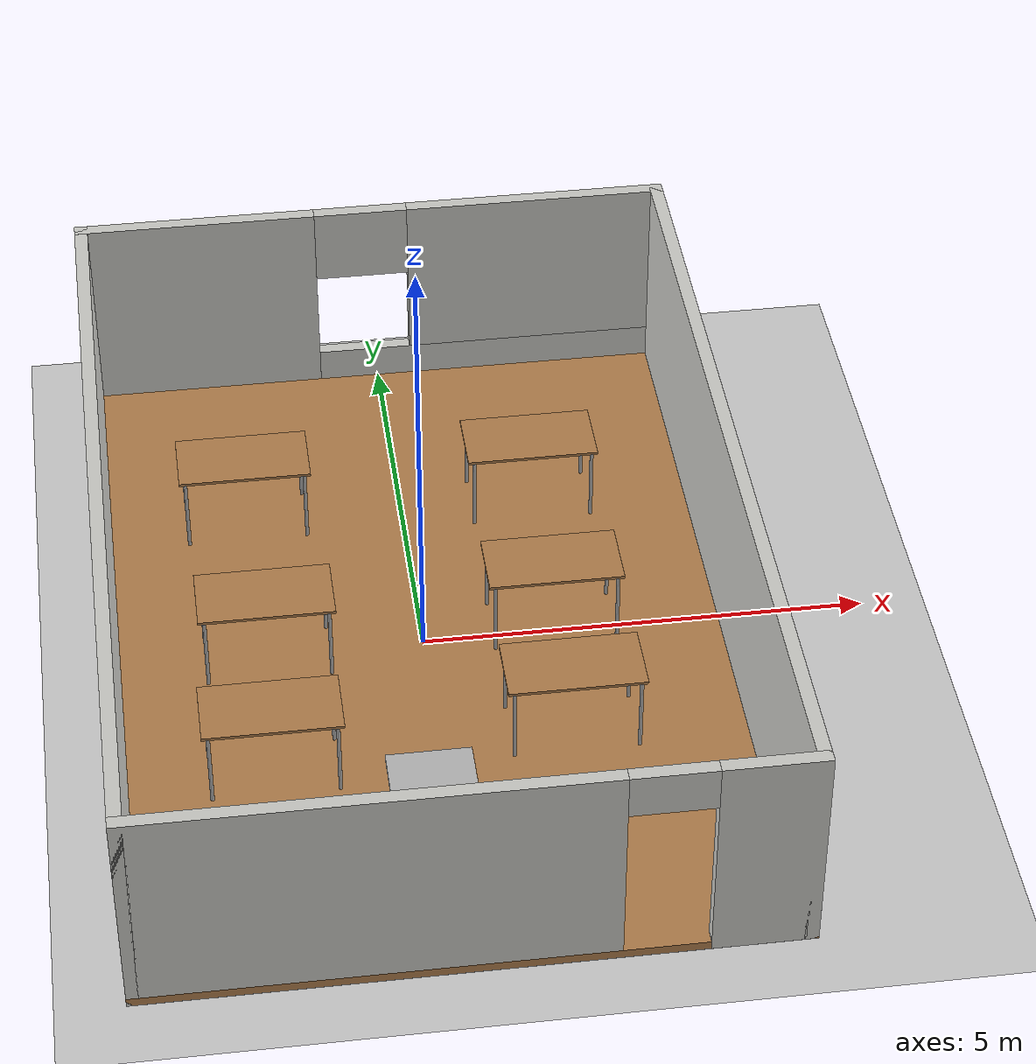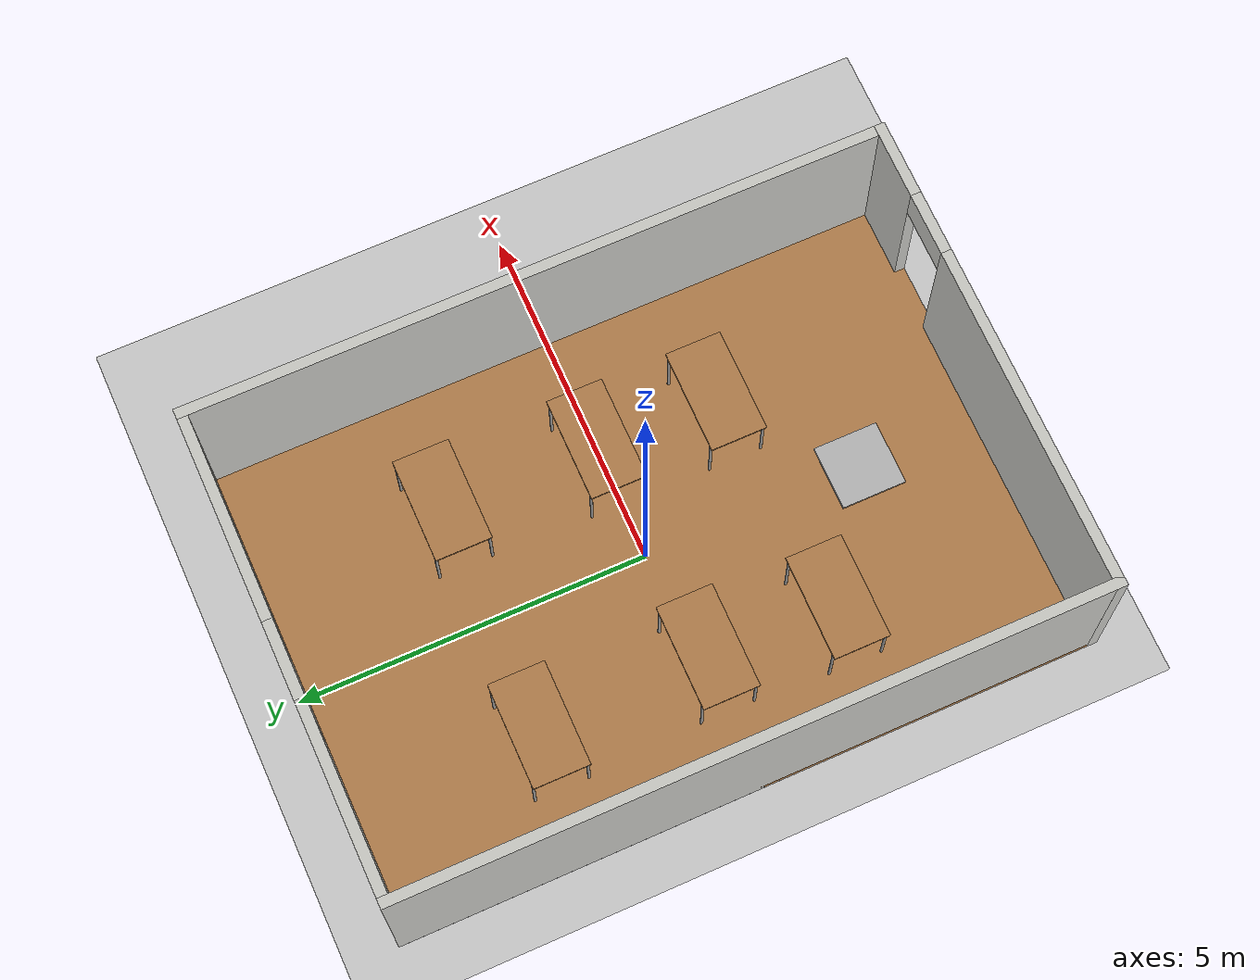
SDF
<sdf version="1.6">
 <world name="default">
  <light name="sun" type="directional">
   <pose>0 0 10 0 -0 0</pose>
   <diffuse>0.8 0.8 0.8 1</diffuse>
   <specular>0.1 0.1 0.1 1</specular>
   <attenuation>
    <range>1000</range>
    <constant>0.9</constant>
    <linear>0.01</linear>
    <quadratic>0.001</quadratic>
   </attenuation>
   <direction>-0.5 0.5 -1</direction>
  </light>
  <model name="ground_plane">
   <static>1</static>
   <link name="link">
    <collision name="collision">
     <geometry><plane><normal>0 0 1</normal><size>100 100</size></plane></geometry>
     <surface><friction><ode><mu>100</mu><mu2>50</mu2></ode></friction></surface>
    </collision>
    <visual name="visual">
     <cast_shadows>0</cast_shadows>
     <geometry><plane><normal>0 0 1</normal><size>100 100</size></plane></geometry>
     <material>
      <script><uri>file://media/materials/scripts/gazebo.material</uri><name>Gazebo/Grey</name></script>
     </material>
    </visual>
   </link>
  </model>
  <gravity>0 0 -9.8</gravity>
  <magnetic_field>6e-06 2.3e-05 -4.2e-05</magnetic_field>
  <atmosphere type="adiabatic"/>
  <physics name="default_physics" default="0" type="ode">
   <max_step_size>0.001</max_step_size>
   <real_time_factor>1</real_time_factor>
   <real_time_update_rate>1000</real_time_update_rate>
  </physics>
  <scene><ambient>0.4 0.4 0.4 1</ambient><background>0.7 0.7 0.7 1</background><shadows>1</shadows></scene>
  <spherical_coordinates>
   <surface_model>EARTH_WGS84</surface_model>
   <latitude_deg>0</latitude_deg>
   <longitude_deg>0</longitude_deg>
   <elevation>0</elevation>
   <heading_deg>0</heading_deg>
  </spherical_coordinates>
  <model name="new.world">
   <model name="jing">
    <model name="cafe_table">
     <static>1</static>
     <link name="link">
      <collision name="surface">
       <pose>0 0 0.755 0 -0 0</pose>
       <geometry><box><size>0.913 0.913 0.04</size></box></geometry>
      </collision>
      <collision name="column">
       <pose>0 0 0.37 0 -0 0</pose>
       <geometry><box><size>0.042 0.042 0.74</size></box></geometry>
      </collision>
      <collision name="base">
       <pose>0 0 0.02 0 -0 0</pose>
       <geometry><box><size>0.56 0.56 0.04</size></box></geometry>
      </collision>
      <visual name="visual">
       <geometry><mesh><uri>model://cafe_table/meshes/cafe_table.dae</uri></mesh></geometry>
      </visual>
     </link>
     <pose>-0.06726 -2.75228 0 0 -0 0</pose>
    </model>
    <model name="jingzhuang1">
     <pose>0.126554 0.275884 0 0 -0 0</pose>
     <link name="Floor_1">
      <collision name="Floor_1_Collision">
       <geometry><box><size>7 10 0.1</size></box></geometry>
       <pose>0 0 0.05 0 -0 0</pose>
      </collision>
      <visual name="Floor_1_Visual">
       <pose>0 0 0.05 0 -0 0</pose>
       <geometry><box><size>7 10 0.1</size></box></geometry>
       <material>
        <script><uri>file://media/materials/scripts/gazebo.material</uri><name>Gazebo/Wood</name></script>
        <ambient>1 1 1 1</ambient>
       </material>
       <meta><layer>1</layer></meta>
      </visual>
      <pose>0 0 0.001 0 -0 0</pose>
     </link>
     <link name="Wall_0">
      <collision name="Wall_0_Collision">
       <geometry><box><size>10 0.15 0.001</size></box></geometry>
       <pose>0 0 0.0005 0 -0 0</pose>
      </collision>
      <visual name="Wall_0_Visual">
       <pose>0 0 0.0005 0 -0 0</pose>
       <geometry><box><size>10 0.15 0.001</size></box></geometry>
       <material>
        <script><uri>file://media/materials/scripts/gazebo.material</uri><name>Gazebo/Grey</name></script>
        <ambient>1 1 1 1</ambient>
       </material>
       <meta><layer>0</layer></meta>
      </visual>
      <pose>-3.425 0 0 0 -0 1.5708</pose>
     </link>
     <link name="Wall_10">
      <collision name="Wall_10_Collision">
       <geometry><box><size>10 0.15 0.001</size></box></geometry>
       <pose>0 0 0.0005 0 -0 0</pose>
      </collision>
      <visual name="Wall_10_Visual">
       <pose>0 0 0.0005 0 -0 0</pose>
       <geometry><box><size>10 0.15 0.001</size></box></geometry>
       <material>
        <script><uri>file://media/materials/scripts/gazebo.material</uri><name>Gazebo/Grey</name></script>
        <ambient>1 1 1 1</ambient>
       </material>
       <meta><layer>0</layer></meta>
      </visual>
      <pose>3.425 0 0 0 -0 1.5708</pose>
     </link>
     <link name="Wall_16">
      <collision name="Wall_16_Collision">
       <geometry><box><size>10 0.15 2.5</size></box></geometry>
       <pose>0 0 1.25 0 -0 0</pose>
      </collision>
      <visual name="Wall_16_Visual">
       <pose>0 0 1.25 0 -0 0</pose>
       <geometry><box><size>10 0.15 2.5</size></box></geometry>
       <material>
        <script><uri>file://media/materials/scripts/gazebo.material</uri><name>Gazebo/CeilingTiled</name></script>
        <ambient>1 1 1 1</ambient>
       </material>
       <meta><layer>1</layer></meta>
      </visual>
      <pose>-3.425 0 0.001 0 -0 1.5708</pose>
     </link>
     <link name="Wall_17">
      <pose>0 4.925 0.001 0 -0 0</pose>
      <visual name="Wall_17_Visual_0">
       <pose>-2.09148 0 1.25 0 -0 0</pose>
       <geometry><box><size>2.81703 0.15 2.5</size></box></geometry>
       <material>
        <script><uri>file://media/materials/scripts/gazebo.material</uri><name>Gazebo/CeilingTiled</name></script>
        <ambient>1 1 1 1</ambient>
       </material>
       <meta><layer>1</layer></meta>
      </visual>
      <collision name="Wall_17_Collision_0">
       <geometry><box><size>2.81703 0.15 2.5</size></box></geometry>
       <pose>-2.09148 0 1.25 0 -0 0</pose>
      </collision>
      <visual name="Wall_17_Visual_1">
       <pose>1.40852 0 0.25 0 -0 0</pose>
       <geometry><box><size>4.18297 0.15 0.5</size></box></geometry>
       <material>
        <script><uri>file://media/materials/scripts/gazebo.material</uri><name>Gazebo/CeilingTiled</name></script>
        <ambient>1 1 1 1</ambient>
       </material>
       <meta><layer>1</layer></meta>
      </visual>
      <collision name="Wall_17_Collision_1">
       <geometry><box><size>4.18297 0.15 0.5</size></box></geometry>
       <pose>1.40852 0 0.25 0 -0 0</pose>
      </collision>
      <visual name="Wall_17_Visual_2">
       <pose>1.95852 0 1.5 0 -0 0</pose>
       <geometry><box><size>3.08297 0.15 2</size></box></geometry>
       <material>
        <script><uri>file://media/materials/scripts/gazebo.material</uri><name>Gazebo/CeilingTiled</name></script>
        <ambient>1 1 1 1</ambient>
       </material>
       <meta><layer>1</layer></meta>
      </visual>
      <collision name="Wall_17_Collision_2">
       <geometry><box><size>3.08297 0.15 2</size></box></geometry>
       <pose>1.95852 0 1.5 0 -0 0</pose>
      </collision>
      <visual name="Wall_17_Visual_3">
       <pose>-0.132966 0 2.05 0 -0 0</pose>
       <geometry><box><size>1.1 0.15 0.9</size></box></geometry>
       <material>
        <script><uri>file://media/materials/scripts/gazebo.material</uri><name>Gazebo/CeilingTiled</name></script>
        <ambient>1 1 1 1</ambient>
       </material>
       <meta><layer>1</layer></meta>
      </visual>
      <collision name="Wall_17_Collision_3">
       <geometry><box><size>1.1 0.15 0.9</size></box></geometry>
       <pose>-0.132966 0 2.05 0 -0 0</pose>
      </collision>
     </link>
     <link name="Wall_18">
      <pose>0 -4.925 0.001 0 -0 0</pose>
      <visual name="Wall_18_Visual_0">
       <pose>-1.00408 0 1.25 0 -0 0</pose>
       <geometry><box><size>4.99185 0.15 2.5</size></box></geometry>
       <material>
        <script><uri>file://media/materials/scripts/gazebo.material</uri><name>Gazebo/CeilingTiled</name></script>
        <ambient>1 1 1 1</ambient>
       </material>
       <meta><layer>1</layer></meta>
      </visual>
      <collision name="Wall_18_Collision_0">
       <geometry><box><size>4.99185 0.15 2.5</size></box></geometry>
       <pose>-1.00408 0 1.25 0 -0 0</pose>
      </collision>
      <visual name="Wall_18_Visual_1">
       <pose>2.94592 0 1.25 0 -0 0</pose>
       <geometry><box><size>1.10815 0.15 2.5</size></box></geometry>
       <material>
        <script><uri>file://media/materials/scripts/gazebo.material</uri><name>Gazebo/CeilingTiled</name></script>
        <ambient>1 1 1 1</ambient>
       </material>
       <meta><layer>1</layer></meta>
      </visual>
      <collision name="Wall_18_Collision_1">
       <geometry><box><size>1.10815 0.15 2.5</size></box></geometry>
       <pose>2.94592 0 1.25 0 -0 0</pose>
      </collision>
      <visual name="Wall_18_Visual_2">
       <pose>1.94185 0 2.25 0 -0 0</pose>
       <geometry><box><size>0.9 0.15 0.5</size></box></geometry>
       <material>
        <script><uri>file://media/materials/scripts/gazebo.material</uri><name>Gazebo/CeilingTiled</name></script>
        <ambient>1 1 1 1</ambient>
       </material>
       <meta><layer>1</layer></meta>
      </visual>
      <collision name="Wall_18_Collision_2">
       <geometry><box><size>0.9 0.15 0.5</size></box></geometry>
       <pose>1.94185 0 2.25 0 -0 0</pose>
      </collision>
     </link>
     <link name="Wall_19">
      <collision name="Wall_19_Collision">
       <geometry><box><size>10 0.15 2.5</size></box></geometry>
       <pose>0 0 1.25 0 -0 0</pose>
      </collision>
      <visual name="Wall_19_Visual">
       <pose>0 0 1.25 0 -0 0</pose>
       <geometry><box><size>10 0.15 2.5</size></box></geometry>
       <material>
        <script><uri>file://media/materials/scripts/gazebo.material</uri><name>Gazebo/CeilingTiled</name></script>
        <ambient>1 1 1 1</ambient>
       </material>
       <meta><layer>1</layer></meta>
      </visual>
      <pose>3.425 0 0.001 0 -0 1.5708</pose>
     </link>
     <link name="Wall_6">
      <collision name="Wall_6_Collision">
       <geometry><box><size>7.00007 0.15 0.001</size></box></geometry>
       <pose>0 0 0.0005 0 -0 0</pose>
      </collision>
      <visual name="Wall_6_Visual">
       <pose>0 0 0.0005 0 -0 0</pose>
       <geometry><box><size>7.00007 0.15 0.001</size></box></geometry>
       <material>
        <script><uri>file://media/materials/scripts/gazebo.material</uri><name>Gazebo/Grey</name></script>
        <ambient>1 1 1 1</ambient>
       </material>
       <meta><layer>0</layer></meta>
      </visual>
      <pose>0 4.925 0 0 -0 0</pose>
     </link>
     <link name="Wall_8">
      <collision name="Wall_8_Collision">
       <geometry><box><size>7 0.15 0.001</size></box></geometry>
       <pose>0 0 0.0005 0 -0 0</pose>
      </collision>
      <visual name="Wall_8_Visual">
       <pose>0 0 0.0005 0 -0 0</pose>
       <geometry><box><size>7 0.15 0.001</size></box></geometry>
       <material>
        <script><uri>file://media/materials/scripts/gazebo.material</uri><name>Gazebo/Grey</name></script>
        <ambient>1 1 1 1</ambient>
       </material>
       <meta><layer>0</layer></meta>
      </visual>
      <pose>0 -4.925 0 0 -0 0</pose>
     </link>
     <static>1</static>
    </model>
    <model name="table">
     <static>1</static>
     <link name="link">
      <collision name="surface">
       <pose>0 0 1 0 -0 0</pose>
       <geometry><box><size>1.5 0.8 0.03</size></box></geometry>
       <surface><friction><ode><mu>0.6</mu><mu2>0.6</mu2></ode></friction></surface>
      </collision>
      <visual name="visual1">
       <pose>0 0 1 0 -0 0</pose>
       <geometry><box><size>1.5 0.8 0.03</size></box></geometry>
       <material>
        <script><uri>file://media/materials/scripts/gazebo.material</uri><name>Gazebo/Wood</name></script>
       </material>
      </visual>
      <collision name="front_left_leg">
       <pose>0.68 0.38 0.5 0 -0 0</pose>
       <geometry><cylinder><radius>0.02</radius><length>1</length></cylinder></geometry>
      </collision>
      <visual name="front_left_leg">
       <pose>0.68 0.38 0.5 0 -0 0</pose>
       <geometry><cylinder><radius>0.02</radius><length>1</length></cylinder></geometry>
       <material>
        <script><uri>file://media/materials/scripts/gazebo.material</uri><name>Gazebo/Grey</name></script>
       </material>
      </visual>
      <collision name="front_right_leg">
       <pose>0.68 -0.38 0.5 0 -0 0</pose>
       <geometry><cylinder><radius>0.02</radius><length>1</length></cylinder></geometry>
      </collision>
      <visual name="front_right_leg">
       <pose>0.68 -0.38 0.5 0 -0 0</pose>
       <geometry><cylinder><radius>0.02</radius><length>1</length></cylinder></geometry>
       <material>
        <script><uri>file://media/materials/scripts/gazebo.material</uri><name>Gazebo/Grey</name></script>
       </material>
      </visual>
      <collision name="back_right_leg">
       <pose>-0.68 -0.38 0.5 0 -0 0</pose>
       <geometry><cylinder><radius>0.02</radius><length>1</length></cylinder></geometry>
      </collision>
      <visual name="back_right_leg">
       <pose>-0.68 -0.38 0.5 0 -0 0</pose>
       <geometry><cylinder><radius>0.02</radius><length>1</length></cylinder></geometry>
       <material>
        <script><uri>file://media/materials/scripts/gazebo.material</uri><name>Gazebo/Grey</name></script>
       </material>
      </visual>
      <collision name="back_left_leg">
       <pose>-0.68 0.38 0.5 0 -0 0</pose>
       <geometry><cylinder><radius>0.02</radius><length>1</length></cylinder></geometry>
      </collision>
      <visual name="back_left_leg">
       <pose>-0.68 0.38 0.5 0 -0 0</pose>
       <geometry><cylinder><radius>0.02</radius><length>1</length></cylinder></geometry>
       <material>
        <script><uri>file://media/materials/scripts/gazebo.material</uri><name>Gazebo/Grey</name></script>
       </material>
      </visual>
     </link>
     <pose>-1.66047 2.55312 0 0 -0 0</pose>
    </model>
    <model name="table_0">
     <static>1</static>
     <link name="link">
      <collision name="surface">
       <pose>0 0 1 0 -0 0</pose>
       <geometry><box><size>1.5 0.8 0.03</size></box></geometry>
       <surface><friction><ode><mu>0.6</mu><mu2>0.6</mu2></ode></friction></surface>
      </collision>
      <visual name="visual1">
       <pose>0 0 1 0 -0 0</pose>
       <geometry><box><size>1.5 0.8 0.03</size></box></geometry>
       <material>
        <script><uri>file://media/materials/scripts/gazebo.material</uri><name>Gazebo/Wood</name></script>
       </material>
      </visual>
      <collision name="front_left_leg">
       <pose>0.68 0.38 0.5 0 -0 0</pose>
       <geometry><cylinder><radius>0.02</radius><length>1</length></cylinder></geometry>
      </collision>
      <visual name="front_left_leg">
       <pose>0.68 0.38 0.5 0 -0 0</pose>
       <geometry><cylinder><radius>0.02</radius><length>1</length></cylinder></geometry>
       <material>
        <script><uri>file://media/materials/scripts/gazebo.material</uri><name>Gazebo/Grey</name></script>
       </material>
      </visual>
      <collision name="front_right_leg">
       <pose>0.68 -0.38 0.5 0 -0 0</pose>
       <geometry><cylinder><radius>0.02</radius><length>1</length></cylinder></geometry>
      </collision>
      <visual name="front_right_leg">
       <pose>0.68 -0.38 0.5 0 -0 0</pose>
       <geometry><cylinder><radius>0.02</radius><length>1</length></cylinder></geometry>
       <material>
        <script><uri>file://media/materials/scripts/gazebo.material</uri><name>Gazebo/Grey</name></script>
       </material>
      </visual>
      <collision name="back_right_leg">
       <pose>-0.68 -0.38 0.5 0 -0 0</pose>
       <geometry><cylinder><radius>0.02</radius><length>1</length></cylinder></geometry>
      </collision>
      <visual name="back_right_leg">
       <pose>-0.68 -0.38 0.5 0 -0 0</pose>
       <geometry><cylinder><radius>0.02</radius><length>1</length></cylinder></geometry>
       <material>
        <script><uri>file://media/materials/scripts/gazebo.material</uri><name>Gazebo/Grey</name></script>
       </material>
      </visual>
      <collision name="back_left_leg">
       <pose>-0.68 0.38 0.5 0 -0 0</pose>
       <geometry><cylinder><radius>0.02</radius><length>1</length></cylinder></geometry>
      </collision>
      <visual name="back_left_leg">
       <pose>-0.68 0.38 0.5 0 -0 0</pose>
       <geometry><cylinder><radius>0.02</radius><length>1</length></cylinder></geometry>
       <material>
        <script><uri>file://media/materials/scripts/gazebo.material</uri><name>Gazebo/Grey</name></script>
       </material>
      </visual>
     </link>
     <pose>-1.59073 0.155471 0 0 -0 0</pose>
    </model>
    <model name="table_1">
     <static>1</static>
     <link name="link">
      <collision name="surface">
       <pose>0 0 1 0 -0 0</pose>
       <geometry><box><size>1.5 0.8 0.03</size></box></geometry>
       <surface><friction><ode><mu>0.6</mu><mu2>0.6</mu2></ode></friction></surface>
      </collision>
      <visual name="visual1">
       <pose>0 0 1 0 -0 0</pose>
       <geometry><box><size>1.5 0.8 0.03</size></box></geometry>
       <material>
        <script><uri>file://media/materials/scripts/gazebo.material</uri><name>Gazebo/Wood</name></script>
       </material>
      </visual>
      <collision name="front_left_leg">
       <pose>0.68 0.38 0.5 0 -0 0</pose>
       <geometry><cylinder><radius>0.02</radius><length>1</length></cylinder></geometry>
      </collision>
      <visual name="front_left_leg">
       <pose>0.68 0.38 0.5 0 -0 0</pose>
       <geometry><cylinder><radius>0.02</radius><length>1</length></cylinder></geometry>
       <material>
        <script><uri>file://media/materials/scripts/gazebo.material</uri><name>Gazebo/Grey</name></script>
       </material>
      </visual>
      <collision name="front_right_leg">
       <pose>0.68 -0.38 0.5 0 -0 0</pose>
       <geometry><cylinder><radius>0.02</radius><length>1</length></cylinder></geometry>
      </collision>
      <visual name="front_right_leg">
       <pose>0.68 -0.38 0.5 0 -0 0</pose>
       <geometry><cylinder><radius>0.02</radius><length>1</length></cylinder></geometry>
       <material>
        <script><uri>file://media/materials/scripts/gazebo.material</uri><name>Gazebo/Grey</name></script>
       </material>
      </visual>
      <collision name="back_right_leg">
       <pose>-0.68 -0.38 0.5 0 -0 0</pose>
       <geometry><cylinder><radius>0.02</radius><length>1</length></cylinder></geometry>
      </collision>
      <visual name="back_right_leg">
       <pose>-0.68 -0.38 0.5 0 -0 0</pose>
       <geometry><cylinder><radius>0.02</radius><length>1</length></cylinder></geometry>
       <material>
        <script><uri>file://media/materials/scripts/gazebo.material</uri><name>Gazebo/Grey</name></script>
       </material>
      </visual>
      <collision name="back_left_leg">
       <pose>-0.68 0.38 0.5 0 -0 0</pose>
       <geometry><cylinder><radius>0.02</radius><length>1</length></cylinder></geometry>
      </collision>
      <visual name="back_left_leg">
       <pose>-0.68 0.38 0.5 0 -0 0</pose>
       <geometry><cylinder><radius>0.02</radius><length>1</length></cylinder></geometry>
       <material>
        <script><uri>file://media/materials/scripts/gazebo.material</uri><name>Gazebo/Grey</name></script>
       </material>
      </visual>
     </link>
     <pose>-1.66332 -1.65975 0 0 -0 0</pose>
    </model>
    <model name="table_2">
     <static>1</static>
     <link name="link">
      <collision name="surface">
       <pose>0 0 1 0 -0 0</pose>
       <geometry><box><size>1.5 0.8 0.03</size></box></geometry>
       <surface><friction><ode><mu>0.6</mu><mu2>0.6</mu2></ode></friction></surface>
      </collision>
      <visual name="visual1">
       <pose>0 0 1 0 -0 0</pose>
       <geometry><box><size>1.5 0.8 0.03</size></box></geometry>
       <material>
        <script><uri>file://media/materials/scripts/gazebo.material</uri><name>Gazebo/Wood</name></script>
       </material>
      </visual>
      <collision name="front_left_leg">
       <pose>0.68 0.38 0.5 0 -0 0</pose>
       <geometry><cylinder><radius>0.02</radius><length>1</length></cylinder></geometry>
      </collision>
      <visual name="front_left_leg">
       <pose>0.68 0.38 0.5 0 -0 0</pose>
       <geometry><cylinder><radius>0.02</radius><length>1</length></cylinder></geometry>
       <material>
        <script><uri>file://media/materials/scripts/gazebo.material</uri><name>Gazebo/Grey</name></script>
       </material>
      </visual>
      <collision name="front_right_leg">
       <pose>0.68 -0.38 0.5 0 -0 0</pose>
       <geometry><cylinder><radius>0.02</radius><length>1</length></cylinder></geometry>
      </collision>
      <visual name="front_right_leg">
       <pose>0.68 -0.38 0.5 0 -0 0</pose>
       <geometry><cylinder><radius>0.02</radius><length>1</length></cylinder></geometry>
       <material>
        <script><uri>file://media/materials/scripts/gazebo.material</uri><name>Gazebo/Grey</name></script>
       </material>
      </visual>
      <collision name="back_right_leg">
       <pose>-0.68 -0.38 0.5 0 -0 0</pose>
       <geometry><cylinder><radius>0.02</radius><length>1</length></cylinder></geometry>
      </collision>
      <visual name="back_right_leg">
       <pose>-0.68 -0.38 0.5 0 -0 0</pose>
       <geometry><cylinder><radius>0.02</radius><length>1</length></cylinder></geometry>
       <material>
        <script><uri>file://media/materials/scripts/gazebo.material</uri><name>Gazebo/Grey</name></script>
       </material>
      </visual>
      <collision name="back_left_leg">
       <pose>-0.68 0.38 0.5 0 -0 0</pose>
       <geometry><cylinder><radius>0.02</radius><length>1</length></cylinder></geometry>
      </collision>
      <visual name="back_left_leg">
       <pose>-0.68 0.38 0.5 0 -0 0</pose>
       <geometry><cylinder><radius>0.02</radius><length>1</length></cylinder></geometry>
       <material>
        <script><uri>file://media/materials/scripts/gazebo.material</uri><name>Gazebo/Grey</name></script>
       </material>
      </visual>
     </link>
     <pose>1.65063 2.51376 0 0 -0 0</pose>
    </model>
    <model name="table_3">
     <static>1</static>
     <link name="link">
      <collision name="surface">
       <pose>0 0 1 0 -0 0</pose>
       <geometry><box><size>1.5 0.8 0.03</size></box></geometry>
       <surface><friction><ode><mu>0.6</mu><mu2>0.6</mu2></ode></friction></surface>
      </collision>
      <visual name="visual1">
       <pose>0 0 1 0 -0 0</pose>
       <geometry><box><size>1.5 0.8 0.03</size></box></geometry>
       <material>
        <script><uri>file://media/materials/scripts/gazebo.material</uri><name>Gazebo/Wood</name></script>
       </material>
      </visual>
      <collision name="front_left_leg">
       <pose>0.68 0.38 0.5 0 -0 0</pose>
       <geometry><cylinder><radius>0.02</radius><length>1</length></cylinder></geometry>
      </collision>
      <visual name="front_left_leg">
       <pose>0.68 0.38 0.5 0 -0 0</pose>
       <geometry><cylinder><radius>0.02</radius><length>1</length></cylinder></geometry>
       <material>
        <script><uri>file://media/materials/scripts/gazebo.material</uri><name>Gazebo/Grey</name></script>
       </material>
      </visual>
      <collision name="front_right_leg">
       <pose>0.68 -0.38 0.5 0 -0 0</pose>
       <geometry><cylinder><radius>0.02</radius><length>1</length></cylinder></geometry>
      </collision>
      <visual name="front_right_leg">
       <pose>0.68 -0.38 0.5 0 -0 0</pose>
       <geometry><cylinder><radius>0.02</radius><length>1</length></cylinder></geometry>
       <material>
        <script><uri>file://media/materials/scripts/gazebo.material</uri><name>Gazebo/Grey</name></script>
       </material>
      </visual>
      <collision name="back_right_leg">
       <pose>-0.68 -0.38 0.5 0 -0 0</pose>
       <geometry><cylinder><radius>0.02</radius><length>1</length></cylinder></geometry>
      </collision>
      <visual name="back_right_leg">
       <pose>-0.68 -0.38 0.5 0 -0 0</pose>
       <geometry><cylinder><radius>0.02</radius><length>1</length></cylinder></geometry>
       <material>
        <script><uri>file://media/materials/scripts/gazebo.material</uri><name>Gazebo/Grey</name></script>
       </material>
      </visual>
      <collision name="back_left_leg">
       <pose>-0.68 0.38 0.5 0 -0 0</pose>
       <geometry><cylinder><radius>0.02</radius><length>1</length></cylinder></geometry>
      </collision>
      <visual name="back_left_leg">
       <pose>-0.68 0.38 0.5 0 -0 0</pose>
       <geometry><cylinder><radius>0.02</radius><length>1</length></cylinder></geometry>
       <material>
        <script><uri>file://media/materials/scripts/gazebo.material</uri><name>Gazebo/Grey</name></script>
       </material>
      </visual>
     </link>
     <pose>1.61298 0.318659 0 0 -0 0</pose>
    </model>
    <model name="table_4">
     <static>1</static>
     <link name="link">
      <collision name="surface">
       <pose>0 0 1 0 -0 0</pose>
       <geometry><box><size>1.5 0.8 0.03</size></box></geometry>
       <surface><friction><ode><mu>0.6</mu><mu2>0.6</mu2></ode></friction></surface>
      </collision>
      <visual name="visual1">
       <pose>0 0 1 0 -0 0</pose>
       <geometry><box><size>1.5 0.8 0.03</size></box></geometry>
       <material>
        <script><uri>file://media/materials/scripts/gazebo.material</uri><name>Gazebo/Wood</name></script>
       </material>
      </visual>
      <collision name="front_left_leg">
       <pose>0.68 0.38 0.5 0 -0 0</pose>
       <geometry><cylinder><radius>0.02</radius><length>1</length></cylinder></geometry>
      </collision>
      <visual name="front_left_leg">
       <pose>0.68 0.38 0.5 0 -0 0</pose>
       <geometry><cylinder><radius>0.02</radius><length>1</length></cylinder></geometry>
       <material>
        <script><uri>file://media/materials/scripts/gazebo.material</uri><name>Gazebo/Grey</name></script>
       </material>
      </visual>
      <collision name="front_right_leg">
       <pose>0.68 -0.38 0.5 0 -0 0</pose>
       <geometry><cylinder><radius>0.02</radius><length>1</length></cylinder></geometry>
      </collision>
      <visual name="front_right_leg">
       <pose>0.68 -0.38 0.5 0 -0 0</pose>
       <geometry><cylinder><radius>0.02</radius><length>1</length></cylinder></geometry>
       <material>
        <script><uri>file://media/materials/scripts/gazebo.material</uri><name>Gazebo/Grey</name></script>
       </material>
      </visual>
      <collision name="back_right_leg">
       <pose>-0.68 -0.38 0.5 0 -0 0</pose>
       <geometry><cylinder><radius>0.02</radius><length>1</length></cylinder></geometry>
      </collision>
      <visual name="back_right_leg">
       <pose>-0.68 -0.38 0.5 0 -0 0</pose>
       <geometry><cylinder><radius>0.02</radius><length>1</length></cylinder></geometry>
       <material>
        <script><uri>file://media/materials/scripts/gazebo.material</uri><name>Gazebo/Grey</name></script>
       </material>
      </visual>
      <collision name="back_left_leg">
       <pose>-0.68 0.38 0.5 0 -0 0</pose>
       <geometry><cylinder><radius>0.02</radius><length>1</length></cylinder></geometry>
      </collision>
      <visual name="back_left_leg">
       <pose>-0.68 0.38 0.5 0 -0 0</pose>
       <geometry><cylinder><radius>0.02</radius><length>1</length></cylinder></geometry>
       <material>
        <script><uri>file://media/materials/scripts/gazebo.material</uri><name>Gazebo/Grey</name></script>
       </material>
      </visual>
     </link>
     <pose>1.59163 -1.40487 0 0 -0 0</pose>
    </model>
    <static>0</static>
    <pose>-0 -3e-06 0 0 -0 0</pose>
   </model>
   <static>0</static>
   <pose>-0.151519 -0.255217 0 0 -0 0</pose>
  </model>
 </world>
</sdf>
